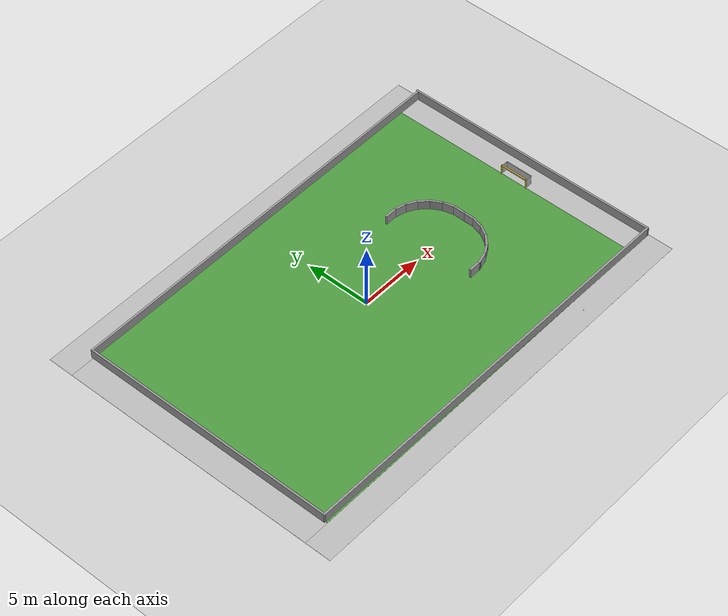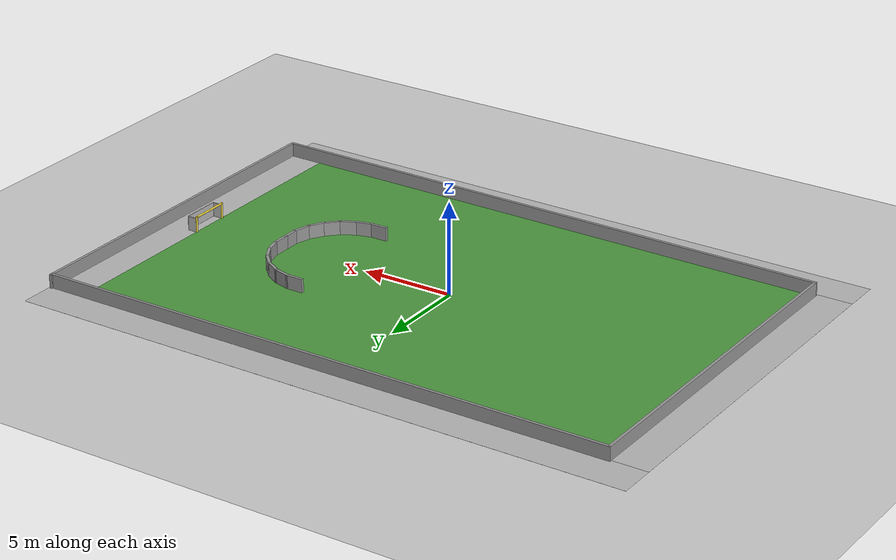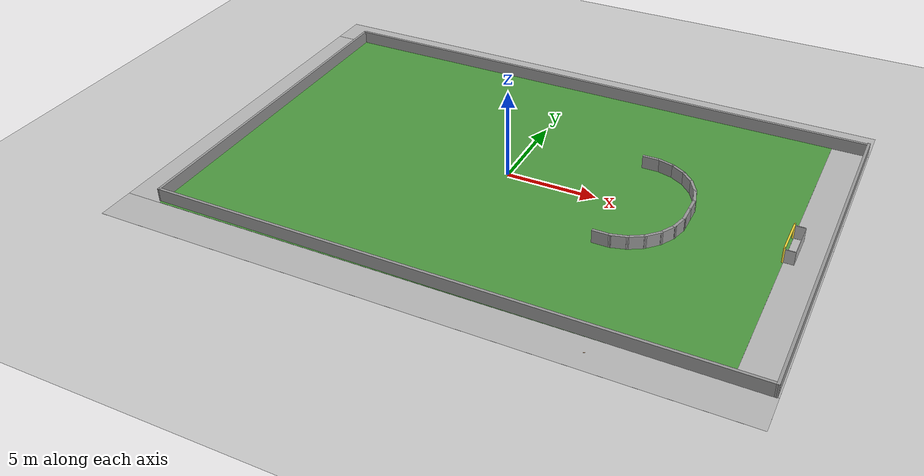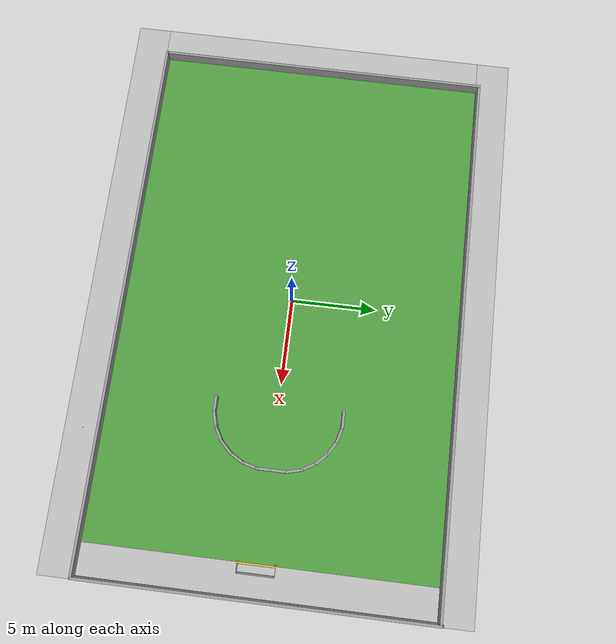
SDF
<sdf version="1.6">
 <world name="default">
  <model name="ground_plane">
   <static>1</static>
   <link name="link">
    <collision name="collision">
     <geometry><plane><normal>0 0 1</normal><size>100 100</size></plane></geometry>
     <surface>
      <contact><collide_bitmask>65535</collide_bitmask></contact>
      <friction><ode><mu>100</mu><mu2>50</mu2></ode></friction>
     </surface>
    </collision>
    <visual name="visual">
     <cast_shadows>0</cast_shadows>
     <geometry><plane><normal>0 0 1</normal><size>100 100</size></plane></geometry>
     <material>
      <script><uri>file://media/materials/scripts/gazebo.material</uri><name>Gazebo/Grey</name></script>
     </material>
    </visual>
   </link>
  </model>
  <gravity>0 0 -9.8</gravity>
  <magnetic_field>6e-06 2.3e-05 -4.2e-05</magnetic_field>
  <atmosphere type="adiabatic"/>
  <physics name="default_physics" default="0" type="ode">
   <max_step_size>0.001</max_step_size>
   <real_time_factor>1</real_time_factor>
   <real_time_update_rate>1000</real_time_update_rate>
  </physics>
  <scene><ambient>0.4 0.4 0.4 1</ambient><background>0.7 0.7 0.7 1</background><shadows>1</shadows></scene>
  <spherical_coordinates>
   <surface_model>EARTH_WGS84</surface_model>
   <latitude_deg>0</latitude_deg>
   <longitude_deg>0</longitude_deg>
   <elevation>0</elevation>
   <heading_deg>0</heading_deg>
  </spherical_coordinates>
  <model name="robocup_3d_goal">
   <static>1</static>
   <link name="left_post">
    <pose>0 1.05 0.45 0 -0 0</pose>
    <collision name="collision">
     <geometry><cylinder><radius>0.05</radius><length>0.9</length></cylinder></geometry>
    </collision>
    <visual name="visual">
     <geometry><cylinder><radius>0.05</radius><length>0.9</length></cylinder></geometry>
     <material>
      <script><uri>file://media/materials/scripts/gazebo.material</uri><name>Gazebo/ZincYellow</name></script>
     </material>
    </visual>
   </link>
   <link name="left_support_horiz_lower">
    <pose>0.3 1.05 0.01 0 -0 0</pose>
    <collision name="collision"><geometry><box><size>0.5 0.02 0.02</size></box></geometry></collision>
    <visual name="visual">
     <geometry><box><size>0.5 0.02 0.02</size></box></geometry>
     <material>
      <script><uri>file://media/materials/scripts/gazebo.material</uri><name>Gazebo/White</name></script>
     </material>
    </visual>
   </link>
   <link name="left_support_horiz_upper">
    <pose>0.3 1.05 0.79 0 -0 0</pose>
    <collision name="collision"><geometry><box><size>0.5 0.02 0.02</size></box></geometry></collision>
    <visual name="visual">
     <geometry><box><size>0.5 0.02 0.02</size></box></geometry>
     <material>
      <script><uri>file://media/materials/scripts/gazebo.material</uri><name>Gazebo/White</name></script>
     </material>
    </visual>
   </link>
   <link name="left_support_vertical">
    <pose>0.56 1.05 0.4 3.14159 1.57079 3.14159</pose>
    <collision name="collision"><geometry><box><size>0.8 0.02 0.02</size></box></geometry></collision>
    <visual name="visual">
     <geometry><box><size>0.8 0.02 0.02</size></box></geometry>
     <material>
      <script><uri>file://media/materials/scripts/gazebo.material</uri><name>Gazebo/White</name></script>
     </material>
    </visual>
   </link>
   <link name="right_support_horiz_lower">
    <pose>0.3 -1.05 0.01 0 -0 0</pose>
    <collision name="collision"><geometry><box><size>0.5 0.02 0.02</size></box></geometry></collision>
    <visual name="visual">
     <geometry><box><size>0.5 0.02 0.02</size></box></geometry>
     <material>
      <script><uri>file://media/materials/scripts/gazebo.material</uri><name>Gazebo/White</name></script>
     </material>
    </visual>
   </link>
   <link name="right_support_horiz_upper">
    <pose>0.3 -1.05 0.79 0 -0 0</pose>
    <collision name="collision"><geometry><box><size>0.5 0.02 0.02</size></box></geometry></collision>
    <visual name="visual">
     <geometry><box><size>0.5 0.02 0.02</size></box></geometry>
     <material>
      <script><uri>file://media/materials/scripts/gazebo.material</uri><name>Gazebo/White</name></script>
     </material>
    </visual>
   </link>
   <link name="right_support_vertical">
    <pose>0.56 -1.05 0.4 3.14159 1.57079 3.14159</pose>
    <collision name="collision"><geometry><box><size>0.8 0.02 0.02</size></box></geometry></collision>
    <visual name="visual">
     <geometry><box><size>0.8 0.02 0.02</size></box></geometry>
     <material>
      <script><uri>file://media/materials/scripts/gazebo.material</uri><name>Gazebo/White</name></script>
     </material>
    </visual>
   </link>
   <link name="center_support_horiz_lower">
    <pose>0.56 0 0.01 3.14159 1.57079 3.14159</pose>
    <collision name="collision"><geometry><box><size>0.02 2.08 0.02</size></box></geometry></collision>
    <visual name="visual">
     <geometry><box><size>0.02 2.08 0.02</size></box></geometry>
     <material>
      <script><uri>file://media/materials/scripts/gazebo.material</uri><name>Gazebo/White</name></script>
     </material>
    </visual>
   </link>
   <link name="center_support_horiz_upper">
    <pose>0.56 0 0.79 3.14159 1.57079 3.14159</pose>
    <collision name="collision"><geometry><box><size>0.02 2.08 0.02</size></box></geometry></collision>
    <visual name="visual">
     <geometry><box><size>0.02 2.08 0.02</size></box></geometry>
     <material>
      <script><uri>file://media/materials/scripts/gazebo.material</uri><name>Gazebo/White</name></script>
     </material>
    </visual>
   </link>
   <link name="right_post">
    <pose>0 -1.05 0.45 0 -0 0</pose>
    <collision name="collision">
     <geometry><cylinder><radius>0.05</radius><length>0.9</length></cylinder></geometry>
    </collision>
    <visual name="visual">
     <geometry><cylinder><radius>0.05</radius><length>0.9</length></cylinder></geometry>
     <material>
      <script><uri>file://media/materials/scripts/gazebo.material</uri><name>Gazebo/ZincYellow</name></script>
     </material>
    </visual>
   </link>
   <link name="crossbar">
    <pose>0 0 0.85 1.57 1.57 0</pose>
    <collision name="collision">
     <geometry><cylinder><radius>0.05</radius><length>2</length></cylinder></geometry>
    </collision>
    <visual name="visual">
     <geometry><cylinder><radius>0.05</radius><length>2</length></cylinder></geometry>
     <material>
      <script><uri>file://media/materials/scripts/gazebo.material</uri><name>Gazebo/ZincYellow</name></script>
     </material>
    </visual>
   </link>
   <link name="center_net">
    <pose>0.56 0 0.4 0 -0 0</pose>
    <collision name="collision"><geometry><box><size>0.01 2.1 0.8</size></box></geometry></collision>
    <visual name="visual">
     <geometry><box><size>0.01 2.1 0.8</size></box></geometry>
     <material>
      <script>
       <uri>model://robocup09_spl_field/materials/scripts/</uri>
       <uri>model://robocup09_spl_field/materials/textures/</uri>
       <name>RoboCup/Net</name>
      </script>
     </material>
    </visual>
   </link>
   <link name="left_net">
    <pose>0.3 1.05 0.4 0 -0 0</pose>
    <collision name="collision"><geometry><box><size>0.5 0.01 0.76</size></box></geometry></collision>
    <visual name="visual">
     <geometry><box><size>0.5 0.01 0.76</size></box></geometry>
     <material>
      <script>
       <uri>model://robocup09_spl_field/materials/scripts/</uri>
       <uri>model://robocup09_spl_field/materials/textures/</uri>
       <name>RoboCup/Net</name>
      </script>
     </material>
    </visual>
   </link>
   <link name="right_net">
    <pose>0.3 -1.05 0.4 0 -0 0</pose>
    <collision name="collision"><geometry><box><size>0.5 0.01 0.76</size></box></geometry></collision>
    <visual name="visual">
     <geometry><box><size>0.5 0.01 0.76</size></box></geometry>
     <material>
      <script>
       <uri>model://robocup09_spl_field/materials/scripts/</uri>
       <uri>model://robocup09_spl_field/materials/textures/</uri>
       <name>RoboCup/Net</name>
      </script>
     </material>
    </visual>
   </link>
   <pose>14.9582 -0.113975 0 0 -0 0</pose>
  </model>
  <model name="wood_block_10_2_1cm">
   <link name="link">
    <pose>0 0 0.005 0 -0 0</pose>
    <inertial>
     <mass>0.0125</mass>
     <inertia>
      <ixx>7.55208e-07</ixx>
      <ixy>0</ixy>
      <ixz>0</ixz>
      <iyy>1.05208e-05</iyy>
      <iyz>0</iyz>
      <izz>1.10677e-05</izz>
     </inertia>
    </inertial>
    <collision name="collision">
     <geometry><box><size>0.1 0.025 0.01</size></box></geometry>
     <surface>
      <contact>
       <poissons_ratio>0.347</poissons_ratio>
       <elastic_modulus>8.8e+09</elastic_modulus>
       <ode><kp>100000</kp><kd>1</kd><max_vel>1</max_vel><min_depth>0.001</min_depth></ode>
      </contact>
      <friction>
       <torsional>
        <coefficient>1</coefficient>
        <use_patch_radius>0</use_patch_radius>
        <surface_radius>0.05</surface_radius>
       </torsional>
      </friction>
     </surface>
    </collision>
    <visual name="visual">
     <geometry><box><size>0.1 0.025 0.01</size></box></geometry>
     <material>
      <script><uri>file://media/materials/scripts/gazebo.material</uri><name>Gazebo/Wood</name></script>
     </material>
    </visual>
   </link>
   <pose>8.82633 -10.9618 0.009 0 -0 0</pose>
  </model>
  <model name="robocup_3d_field_3">
   <static>1</static>
   <link name="field">
    <pose>0 0 0.01 0 -0 0</pose>
    <collision name="collision">
     <geometry><plane><normal>0 0 1</normal><size>30 20</size></plane></geometry>
     <surface><friction><ode><mu>100</mu><mu2>50</mu2></ode></friction></surface>
    </collision>
    <visual name="base1">
     <pose>0 11 0.001 0 -0 0</pose>
     <cast_shadows>0</cast_shadows>
     <geometry><plane><normal>0 0 1</normal><size>34 2</size></plane></geometry>
     <material>
      <script>
       <uri>model://robocup_3Dsim_field/materials/scripts/</uri>
       <uri>model://robocup_3Dsim_field/materials/textures/</uri>
       <name>RoboCup/FieldBorder</name>
      </script>
     </material>
    </visual>
    <visual name="base2">
     <pose>0 -11 0.001 0 -0 0</pose>
     <cast_shadows>0</cast_shadows>
     <geometry><plane><normal>0 0 1</normal><size>34 2</size></plane></geometry>
     <material>
      <script>
       <uri>model://robocup_3Dsim_field/materials/scripts/</uri>
       <uri>model://robocup_3Dsim_field/materials/textures/</uri>
       <name>RoboCup/FieldBorder</name>
      </script>
     </material>
    </visual>
    <visual name="base3">
     <pose>16 0 0.001 0 -0 0</pose>
     <cast_shadows>0</cast_shadows>
     <geometry><plane><normal>0 0 1</normal><size>2 20</size></plane></geometry>
     <material>
      <script>
       <uri>model://robocup_3Dsim_field/materials/scripts/</uri>
       <uri>model://robocup_3Dsim_field/materials/textures/</uri>
       <name>RoboCup/FieldBorder</name>
      </script>
     </material>
    </visual>
    <visual name="base4">
     <pose>-16 0 0.001 0 -0 0</pose>
     <cast_shadows>0</cast_shadows>
     <geometry><plane><normal>0 0 1</normal><size>2 20</size></plane></geometry>
     <material>
      <script>
       <uri>model://robocup_3Dsim_field/materials/scripts/</uri>
       <uri>model://robocup_3Dsim_field/materials/textures/</uri>
       <name>RoboCup/FieldBorder</name>
      </script>
     </material>
    </visual>
    <visual name="carpet">
     <cast_shadows>0</cast_shadows>
     <geometry><plane><normal>0 0 1</normal><size>30 20</size></plane></geometry>
     <material>
      <script>
       <uri>model://robocup_3Dsim_field/materials/scripts/</uri>
       <uri>model://robocup_3Dsim_field/materials/textures/</uri>
       <name>RoboCup/Grass</name>
      </script>
     </material>
    </visual>
   </link>
   <pose>0.01008 -0.020559 0 0 -0 0</pose>
  </model>
  <light name="user_point_light_0" type="point">
   <pose>15.0109 -0.016872 7 0 -0 0</pose>
   <diffuse>0.5 0.5 0.5 1</diffuse>
   <specular>0.1 0.1 0.1 1</specular>
   <attenuation>
    <range>20</range>
    <constant>0.5</constant>
    <linear>0.01</linear>
    <quadratic>0.01</quadratic>
   </attenuation>
   <cast_shadows>0</cast_shadows>
   <direction>0 0 -1</direction>
  </light>
  <model name="my_outer_wall3">
   <pose>0.921865 0.063346 0 0 -0 0</pose>
   <link name="Wall_62">
    <collision name="Wall_62_Collision"><geometry><box><size>20 0.15 1.5</size></box></geometry></collision>
    <visual name="Wall_62_Visual">
     <geometry><box><size>20 0.15 1.5</size></box></geometry>
     <material>
      <script><uri>file://media/materials/scripts/gazebo.material</uri><name>Gazebo/Grey</name></script>
      <ambient>1 1 1 1</ambient>
     </material>
     <meta><layer>0</layer></meta>
    </visual>
    <pose>-15.9425 0.050105 0 0 -0 1.5708</pose>
   </link>
   <link name="Wall_64">
    <collision name="Wall_64_Collision"><geometry><box><size>32 0.15 1.5</size></box></geometry></collision>
    <visual name="Wall_64_Visual">
     <geometry><box><size>32 0.15 1.5</size></box></geometry>
     <material>
      <script><uri>file://media/materials/scripts/gazebo.material</uri><name>Gazebo/Grey</name></script>
      <ambient>1 1 1 1</ambient>
     </material>
     <meta><layer>0</layer></meta>
    </visual>
    <pose>-0.01749 9.97511 0 0 -0 0</pose>
   </link>
   <link name="Wall_66">
    <collision name="Wall_66_Collision"><geometry><box><size>32.0355 0.15 1.5</size></box></geometry></collision>
    <visual name="Wall_66_Visual">
     <geometry><box><size>32.0355 0.15 1.5</size></box></geometry>
     <material>
      <script><uri>file://media/materials/scripts/gazebo.material</uri><name>Gazebo/Grey</name></script>
      <ambient>1 1 1 1</ambient>
     </material>
     <meta><layer>0</layer></meta>
    </visual>
    <pose>0 -9.96234 0 0 0 -0.005485</pose>
   </link>
   <link name="Wall_69">
    <collision name="Wall_69_Collision"><geometry><box><size>20.25 0.15 1.5</size></box></geometry></collision>
    <visual name="Wall_69_Visual">
     <geometry><box><size>20.25 0.15 1.5</size></box></geometry>
     <material>
      <script><uri>file://media/materials/scripts/gazebo.material</uri><name>Gazebo/Grey</name></script>
      <ambient>1 1 1 1</ambient>
     </material>
     <meta><layer>0</layer></meta>
    </visual>
    <pose>15.9425 0.000205 0 0 -0 1.5708</pose>
   </link>
   <link name="Wall_71">
    <collision name="Wall_71_Collision"><geometry><box><size>1 0.15 1.5</size></box></geometry></collision>
    <visual name="Wall_71_Visual">
     <geometry><box><size>1 0.15 1.5</size></box></geometry>
     <material>
      <script><uri>file://media/materials/scripts/gazebo.material</uri><name>Gazebo/Grey</name></script>
      <ambient>1 1 1 1</ambient>
     </material>
     <meta><layer>0</layer></meta>
    </visual>
    <pose>8.99962 0.444837 0 0 0 -1.5708</pose>
   </link>
   <link name="Wall_73">
    <collision name="Wall_73_Collision"><geometry><box><size>1 0.15 1.5</size></box></geometry></collision>
    <visual name="Wall_73_Visual">
     <geometry><box><size>1 0.15 1.5</size></box></geometry>
     <material>
      <script><uri>file://media/materials/scripts/gazebo.material</uri><name>Gazebo/Grey</name></script>
      <ambient>1 1 1 1</ambient>
     </material>
     <meta><layer>0</layer></meta>
    </visual>
    <pose>8.99962 -0.405163 0 0 0 -1.5708</pose>
   </link>
   <link name="Wall_74">
    <collision name="Wall_74_Collision"><geometry><box><size>1 0.15 1.5</size></box></geometry></collision>
    <visual name="Wall_74_Visual">
     <geometry><box><size>1 0.15 1.5</size></box></geometry>
     <material>
      <script><uri>file://media/materials/scripts/gazebo.material</uri><name>Gazebo/Grey</name></script>
      <ambient>1 1 1 1</ambient>
     </material>
     <meta><layer>0</layer></meta>
    </visual>
    <pose>8.88962 -1.24068 0 0 0 -1.8326</pose>
   </link>
   <link name="Wall_75">
    <collision name="Wall_75_Collision"><geometry><box><size>1 0.15 1.5</size></box></geometry></collision>
    <visual name="Wall_75_Visual">
     <geometry><box><size>1 0.15 1.5</size></box></geometry>
     <material>
      <script><uri>file://media/materials/scripts/gazebo.material</uri><name>Gazebo/Grey</name></script>
      <ambient>1 1 1 1</ambient>
     </material>
     <meta><layer>0</layer></meta>
    </visual>
    <pose>8.56712 -2.01926 0 0 0 -2.0944</pose>
   </link>
   <link name="Wall_76">
    <collision name="Wall_76_Collision"><geometry><box><size>1 0.15 1.5</size></box></geometry></collision>
    <visual name="Wall_76_Visual">
     <geometry><box><size>1 0.15 1.5</size></box></geometry>
     <material>
      <script><uri>file://media/materials/scripts/gazebo.material</uri><name>Gazebo/Grey</name></script>
      <ambient>1 1 1 1</ambient>
     </material>
     <meta><layer>0</layer></meta>
    </visual>
    <pose>8.0541 -2.68784 0 0 0 -2.35619</pose>
   </link>
   <link name="Wall_78">
    <collision name="Wall_78_Collision"><geometry><box><size>1 0.15 1.5</size></box></geometry></collision>
    <visual name="Wall_78_Visual">
     <geometry><box><size>1 0.15 1.5</size></box></geometry>
     <material>
      <script><uri>file://media/materials/scripts/gazebo.material</uri><name>Gazebo/Grey</name></script>
      <ambient>1 1 1 1</ambient>
     </material>
     <meta><layer>0</layer></meta>
    </visual>
    <pose>7.38552 -3.20086 0 0 0 -2.61799</pose>
   </link>
   <link name="Wall_79">
    <collision name="Wall_79_Collision"><geometry><box><size>1 0.15 1.5</size></box></geometry></collision>
    <visual name="Wall_79_Visual">
     <geometry><box><size>1 0.15 1.5</size></box></geometry>
     <material>
      <script><uri>file://media/materials/scripts/gazebo.material</uri><name>Gazebo/Grey</name></script>
      <ambient>1 1 1 1</ambient>
     </material>
     <meta><layer>0</layer></meta>
    </visual>
    <pose>6.60694 -3.52336 0 0 0 -2.87979</pose>
   </link>
   <link name="Wall_80">
    <collision name="Wall_80_Collision"><geometry><box><size>1 0.15 1.5</size></box></geometry></collision>
    <visual name="Wall_80_Visual">
     <geometry><box><size>1 0.15 1.5</size></box></geometry>
     <material>
      <script><uri>file://media/materials/scripts/gazebo.material</uri><name>Gazebo/Grey</name></script>
      <ambient>1 1 1 1</ambient>
     </material>
     <meta><layer>0</layer></meta>
    </visual>
    <pose>5.77142 -3.63336 0 0 -0 3.14159</pose>
   </link>
   <link name="Wall_82">
    <collision name="Wall_82_Collision"><geometry><box><size>1 0.15 1.5</size></box></geometry></collision>
    <visual name="Wall_82_Visual">
     <geometry><box><size>1 0.15 1.5</size></box></geometry>
     <material>
      <script><uri>file://media/materials/scripts/gazebo.material</uri><name>Gazebo/Grey</name></script>
      <ambient>1 1 1 1</ambient>
     </material>
     <meta><layer>0</layer></meta>
    </visual>
    <pose>8.88962 1.28036 0 0 -0 1.8326</pose>
   </link>
   <link name="Wall_88">
    <collision name="Wall_88_Collision"><geometry><box><size>1 0.15 1.5</size></box></geometry></collision>
    <visual name="Wall_88_Visual">
     <geometry><box><size>1 0.15 1.5</size></box></geometry>
     <material>
      <script><uri>file://media/materials/scripts/gazebo.material</uri><name>Gazebo/Grey</name></script>
      <ambient>1 1 1 1</ambient>
     </material>
     <meta><layer>0</layer></meta>
    </visual>
    <pose>8.56712 2.05893 0 0 -0 2.0944</pose>
   </link>
   <link name="Wall_89">
    <collision name="Wall_89_Collision"><geometry><box><size>1 0.15 1.5</size></box></geometry></collision>
    <visual name="Wall_89_Visual">
     <geometry><box><size>1 0.15 1.5</size></box></geometry>
     <material>
      <script><uri>file://media/materials/scripts/gazebo.material</uri><name>Gazebo/Grey</name></script>
      <ambient>1 1 1 1</ambient>
     </material>
     <meta><layer>0</layer></meta>
    </visual>
    <pose>8.0541 2.72752 0 0 -0 2.35619</pose>
   </link>
   <link name="Wall_90">
    <collision name="Wall_90_Collision"><geometry><box><size>1 0.15 1.5</size></box></geometry></collision>
    <visual name="Wall_90_Visual">
     <geometry><box><size>1 0.15 1.5</size></box></geometry>
     <material>
      <script><uri>file://media/materials/scripts/gazebo.material</uri><name>Gazebo/Grey</name></script>
      <ambient>1 1 1 1</ambient>
     </material>
     <meta><layer>0</layer></meta>
    </visual>
    <pose>7.38552 3.24054 0 0 -0 2.61799</pose>
   </link>
   <link name="Wall_91">
    <collision name="Wall_91_Collision"><geometry><box><size>1 0.15 1.5</size></box></geometry></collision>
    <visual name="Wall_91_Visual">
     <geometry><box><size>1 0.15 1.5</size></box></geometry>
     <material>
      <script><uri>file://media/materials/scripts/gazebo.material</uri><name>Gazebo/Grey</name></script>
      <ambient>1 1 1 1</ambient>
     </material>
     <meta><layer>0</layer></meta>
    </visual>
    <pose>6.60694 3.56304 0 0 -0 2.87979</pose>
   </link>
   <link name="Wall_92">
    <collision name="Wall_92_Collision"><geometry><box><size>1 0.15 1.5</size></box></geometry></collision>
    <visual name="Wall_92_Visual">
     <geometry><box><size>1 0.15 1.5</size></box></geometry>
     <material>
      <script><uri>file://media/materials/scripts/gazebo.material</uri><name>Gazebo/Grey</name></script>
      <ambient>1 1 1 1</ambient>
     </material>
     <meta><layer>0</layer></meta>
    </visual>
    <pose>5.77142 3.67303 0 0 -0 3.14159</pose>
   </link>
   <static>1</static>
  </model>
 </world>
</sdf>
